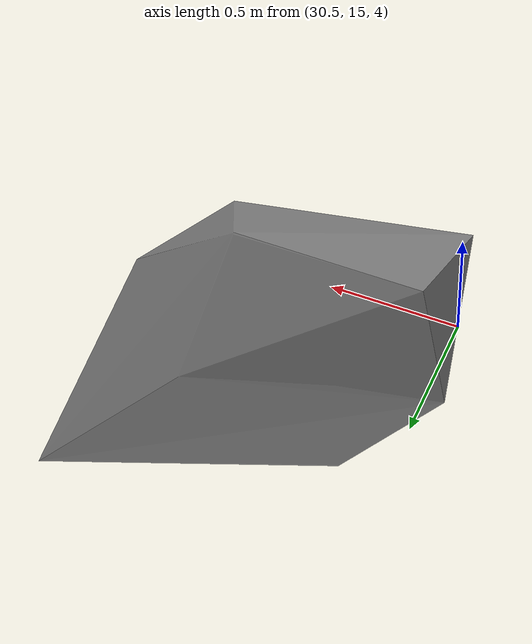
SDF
<sdf version="1.8">
 <model name="blue_mountains">
  <static>true</static>
  <link name="forest_23_21">
   <collision name="tree_16_trunk">
    <pose>30.88953 16.00019 3.052329 0 0 2.099747</pose>
    <geometry><cylinder><radius>0.05017525</radius><length>2.441348</length></cylinder></geometry>
   </collision>
   <collision name="plant_16_crown_0">
    <pose>30.89966 15.98287 1.831656 0 0 2.099747</pose>
    <geometry>
     <mesh><uri>model://blue_mountains/meshes/canopy_8_0.dae</uri><scale>0.200701 0.200701 0.1816582</scale></mesh>
    </geometry>
   </collision>
   <collision name="plant_16_crown_1">
    <pose>30.89966 15.98287 1.831656 0 0 2.099747</pose>
    <geometry>
     <mesh><uri>model://blue_mountains/meshes/canopy_8_1.dae</uri><scale>0.200701 0.200701 0.1816582</scale></mesh>
    </geometry>
   </collision>
   <collision name="tree_18_trunk">
    <pose>36.15719 17.05181 2.548814 0 0 -1.787964</pose>
    <geometry><cylinder><radius>0.0508662</radius><length>2.87935</length></cylinder></geometry>
   </collision>
   <collision name="plant_18_crown_0">
    <pose>36.16158 17.07168 1.109139 0 0 -1.787964</pose>
    <geometry>
     <mesh>
      <uri>model://blue_mountains/meshes/canopy_6_0.dae</uri>
      <scale>0.2034648 0.2034648 0.2122431</scale>
     </mesh>
    </geometry>
   </collision>
   <collision name="plant_18_crown_1">
    <pose>36.16158 17.07168 1.109139 0 0 -1.787964</pose>
    <geometry>
     <mesh>
      <uri>model://blue_mountains/meshes/canopy_6_1.dae</uri>
      <scale>0.2034648 0.2034648 0.2122431</scale>
     </mesh>
    </geometry>
   </collision>
   <collision name="tree_46_trunk">
    <pose>30.44344 14.93611 2.613892 0 0 -2.1679</pose>
    <geometry><cylinder><radius>0.03841094</radius><length>1.98996</length></cylinder></geometry>
   </collision>
   <collision name="plant_46_crown_0">
    <pose>30.45208 14.94881 1.618912 0 0 -2.1679</pose>
    <geometry>
     <mesh>
      <uri>model://blue_mountains/meshes/canopy_4_0.dae</uri>
      <scale>0.1536438 0.1536438 0.1482852</scale>
     </mesh>
    </geometry>
   </collision>
   <collision name="plant_46_crown_1">
    <pose>30.45208 14.94881 1.618912 0 0 -2.1679</pose>
    <geometry>
     <mesh>
      <uri>model://blue_mountains/meshes/canopy_4_1.dae</uri>
      <scale>0.1536438 0.1536438 0.1482852</scale>
     </mesh>
    </geometry>
   </collision>
   <collision name="tree_51_trunk">
    <pose>39.23244 17.48359 1.674162 0 0 1.84734</pose>
    <geometry><cylinder><radius>0.03707054</radius><length>2.200124</length></cylinder></geometry>
   </collision>
   <collision name="plant_51_crown_0">
    <pose>39.23648 17.46932 0.5740995 0 0 1.84734</pose>
    <geometry>
     <mesh>
      <uri>model://blue_mountains/meshes/canopy_6_0.dae</uri>
      <scale>0.1482822 0.1482822 0.1621759</scale>
     </mesh>
    </geometry>
   </collision>
   <collision name="plant_51_crown_1">
    <pose>39.23648 17.46932 0.5740995 0 0 1.84734</pose>
    <geometry>
     <mesh>
      <uri>model://blue_mountains/meshes/canopy_6_1.dae</uri>
      <scale>0.1482822 0.1482822 0.1621759</scale>
     </mesh>
    </geometry>
   </collision>
   <collision name="tree_112_trunk">
    <pose>32.05648 12.81999 2.775335 0 0 -2.555609</pose>
    <geometry><cylinder><radius>0.05678696</radius><length>3.5082</length></cylinder></geometry>
   </collision>
   <collision name="plant_112_crown_0">
    <pose>32.07541 12.83255 1.021235 0 0 -2.555609</pose>
    <geometry>
     <mesh>
      <uri>model://blue_mountains/meshes/canopy_2_0.dae</uri>
      <scale>0.2271479 0.2271479 0.2581171</scale>
     </mesh>
    </geometry>
   </collision>
   <collision name="plant_112_crown_1">
    <pose>32.07541 12.83255 1.021235 0 0 -2.555609</pose>
    <geometry>
     <mesh>
      <uri>model://blue_mountains/meshes/canopy_2_1.dae</uri>
      <scale>0.2271479 0.2271479 0.2581171</scale>
     </mesh>
    </geometry>
   </collision>
   <collision name="tree_157_trunk">
    <pose>31.69096 19.48888 3.387422 0 0 -1.05782</pose>
    <geometry><cylinder><radius>0.03931583</radius><length>1.905594</length></cylinder></geometry>
   </collision>
   <collision name="plant_157_crown_0">
    <pose>31.68325 19.50259 2.434625 0 0 -1.05782</pose>
    <geometry>
     <mesh>
      <uri>model://blue_mountains/meshes/canopy_8_0.dae</uri>
      <scale>0.1572633 0.1572633 0.1417933</scale>
     </mesh>
    </geometry>
   </collision>
   <collision name="plant_157_crown_1">
    <pose>31.68325 19.50259 2.434625 0 0 -1.05782</pose>
    <geometry>
     <mesh>
      <uri>model://blue_mountains/meshes/canopy_8_1.dae</uri>
      <scale>0.1572633 0.1572633 0.1417933</scale>
     </mesh>
    </geometry>
   </collision>
   <collision name="tree_230_trunk">
    <pose>30.88993 16.46943 3.179314 0 0 1.423591</pose>
    <geometry><cylinder><radius>0.03834709</radius><length>2.464366</length></cylinder></geometry>
   </collision>
   <collision name="plant_230_crown_0">
    <pose>30.88768 16.45426 1.947131 0 0 1.423591</pose>
    <geometry>
     <mesh>
      <uri>model://blue_mountains/meshes/canopy_4_0.dae</uri>
      <scale>0.1533883 0.1533883 0.1836364</scale>
     </mesh>
    </geometry>
   </collision>
   <collision name="plant_230_crown_1">
    <pose>30.88768 16.45426 1.947131 0 0 1.423591</pose>
    <geometry>
     <mesh>
      <uri>model://blue_mountains/meshes/canopy_4_1.dae</uri>
      <scale>0.1533883 0.1533883 0.1836364</scale>
     </mesh>
    </geometry>
   </collision>
   <collision name="tree_242_trunk">
    <pose>36.62036 18.8848 2.366649 0 0 1.28106</pose>
    <geometry><cylinder><radius>0.04486017</radius><length>2.423132</length></cylinder></geometry>
   </collision>
   <collision name="plant_242_crown_0">
    <pose>36.61523 18.8676 1.155083 0 0 1.28106</pose>
    <geometry>
     <mesh>
      <uri>model://blue_mountains/meshes/canopy_7_0.dae</uri>
      <scale>0.1794407 0.1794407 0.1821864</scale>
     </mesh>
    </geometry>
   </collision>
   <collision name="plant_242_crown_1">
    <pose>36.61523 18.8676 1.155083 0 0 1.28106</pose>
    <geometry>
     <mesh>
      <uri>model://blue_mountains/meshes/canopy_7_1.dae</uri>
      <scale>0.1794407 0.1794407 0.1821864</scale>
     </mesh>
    </geometry>
   </collision>
   <collision name="tree_245_trunk">
    <pose>35.23278 16.82411 2.51233 0 0 1.507301</pose>
    <geometry><cylinder><radius>0.04345322</radius><length>2.504697</length></cylinder></geometry>
   </collision>
   <collision name="plant_245_crown_0">
    <pose>35.23168 16.80677 1.259982 0 0 1.507301</pose>
    <geometry>
     <mesh>
      <uri>model://blue_mountains/meshes/canopy_4_0.dae</uri>
      <scale>0.1738129 0.1738129 0.1866417</scale>
     </mesh>
    </geometry>
   </collision>
   <collision name="plant_245_crown_1">
    <pose>35.23168 16.80677 1.259982 0 0 1.507301</pose>
    <geometry>
     <mesh>
      <uri>model://blue_mountains/meshes/canopy_4_1.dae</uri>
      <scale>0.1738129 0.1738129 0.1866417</scale>
     </mesh>
    </geometry>
   </collision>
   <collision name="tree_307_trunk">
    <pose>37.77334 18.75098 2.875323 0 0 2.777952</pose>
    <geometry><cylinder><radius>0.06844529</radius><length>3.959532</length></cylinder></geometry>
   </collision>
   <collision name="plant_307_crown_0">
    <pose>37.79892 18.74125 0.8955574 0 0 2.777952</pose>
    <geometry>
     <mesh>
      <uri>model://blue_mountains/meshes/canopy_2_0.dae</uri>
      <scale>0.2737812 0.2737812 0.291324</scale>
     </mesh>
    </geometry>
   </collision>
   <collision name="plant_307_crown_1">
    <pose>37.79892 18.74125 0.8955574 0 0 2.777952</pose>
    <geometry>
     <mesh>
      <uri>model://blue_mountains/meshes/canopy_2_1.dae</uri>
      <scale>0.2737812 0.2737812 0.291324</scale>
     </mesh>
    </geometry>
   </collision>
   <collision name="tree_329_trunk">
    <pose>37.56361 11.942 0.5440206 0 0 2.491261</pose>
    <geometry><cylinder><radius>0.06741486</radius><length>4.203118</length></cylinder></geometry>
   </collision>
   <collision name="plant_329_crown_0">
    <pose>37.58507 11.92567 -1.557538 0 0 2.491261</pose>
    <geometry>
     <mesh>
      <uri>model://blue_mountains/meshes/canopy_1_0.dae</uri>
      <scale>0.2696594 0.2696594 0.3104457</scale>
     </mesh>
    </geometry>
   </collision>
   <collision name="plant_329_crown_1">
    <pose>37.58507 11.92567 -1.557538 0 0 2.491261</pose>
    <geometry>
     <mesh>
      <uri>model://blue_mountains/meshes/canopy_1_1.dae</uri>
      <scale>0.2696594 0.2696594 0.3104457</scale>
     </mesh>
    </geometry>
   </collision>
   <collision name="tree_367_trunk">
    <pose>32.82533 17.01448 3.429985 0 0 0.3549014</pose>
    <geometry><cylinder><radius>0.05329661</radius><length>3.369091</length></cylinder></geometry>
   </collision>
   <collision name="plant_367_crown_0">
    <pose>32.80534 17.00707 1.74544 0 0 0.3549014</pose>
    <geometry>
     <mesh>
      <uri>model://blue_mountains/meshes/canopy_1_0.dae</uri>
      <scale>0.2131865 0.2131865 0.2488438</scale>
     </mesh>
    </geometry>
   </collision>
   <collision name="plant_367_crown_1">
    <pose>32.80534 17.00707 1.74544 0 0 0.3549014</pose>
    <geometry>
     <mesh>
      <uri>model://blue_mountains/meshes/canopy_1_1.dae</uri>
      <scale>0.2131865 0.2131865 0.2488438</scale>
     </mesh>
    </geometry>
   </collision>
   <collision name="tree_372_trunk">
    <pose>34.7804 18.05078 2.782225 0 0 -2.644453</pose>
    <geometry><cylinder><radius>0.04359237</radius><length>2.589221</length></cylinder></geometry>
   </collision>
   <collision name="plant_372_crown_0">
    <pose>34.79572 18.05909 1.487614 0 0 -2.644453</pose>
    <geometry>
     <mesh>
      <uri>model://blue_mountains/meshes/canopy_7_0.dae</uri>
      <scale>0.1743695 0.1743695 0.1946741</scale>
     </mesh>
    </geometry>
   </collision>
   <collision name="plant_372_crown_1">
    <pose>34.79572 18.05909 1.487614 0 0 -2.644453</pose>
    <geometry>
     <mesh>
      <uri>model://blue_mountains/meshes/canopy_7_1.dae</uri>
      <scale>0.1743695 0.1743695 0.1946741</scale>
     </mesh>
    </geometry>
   </collision>
   <collision name="tree_433_trunk">
    <pose>37.75774 15.99304 1.961537 0 0 2.148598</pose>
    <geometry><cylinder><radius>0.04737436</radius><length>2.426991</length></cylinder></geometry>
   </collision>
   <collision name="plant_433_crown_0">
    <pose>37.76809 15.97717 0.7480416 0 0 2.148598</pose>
    <geometry>
     <mesh>
      <uri>model://blue_mountains/meshes/canopy_2_0.dae</uri>
      <scale>0.1894974 0.1894974 0.1785667</scale>
     </mesh>
    </geometry>
   </collision>
   <collision name="plant_433_crown_1">
    <pose>37.76809 15.97717 0.7480416 0 0 2.148598</pose>
    <geometry>
     <mesh>
      <uri>model://blue_mountains/meshes/canopy_2_1.dae</uri>
      <scale>0.1894974 0.1894974 0.1785667</scale>
     </mesh>
    </geometry>
   </collision>
   <collision name="tree_460_trunk">
    <pose>33.45835 13.04389 2.579591 0 0 -0.6585621</pose>
    <geometry><cylinder><radius>0.06677845</radius><length>3.311467</length></cylinder></geometry>
   </collision>
   <collision name="plant_460_crown_0">
    <pose>33.43723 13.06023 0.9238577 0 0 -0.6585621</pose>
    <geometry>
     <mesh>
      <uri>model://blue_mountains/meshes/canopy_8_0.dae</uri>
      <scale>0.2671138 0.2671138 0.2464028</scale>
     </mesh>
    </geometry>
   </collision>
   <collision name="plant_460_crown_1">
    <pose>33.43723 13.06023 0.9238577 0 0 -0.6585621</pose>
    <geometry>
     <mesh>
      <uri>model://blue_mountains/meshes/canopy_8_1.dae</uri>
      <scale>0.2671138 0.2671138 0.2464028</scale>
     </mesh>
    </geometry>
   </collision>
   <collision name="tree_462_trunk">
    <pose>37.47698 15.02886 1.754664 0 0 2.053053</pose>
    <geometry><cylinder><radius>0.03705031</radius><length>2.055434</length></cylinder></geometry>
   </collision>
   <collision name="plant_462_crown_0">
    <pose>37.48385 15.01573 0.7269468 0 0 2.053053</pose>
    <geometry>
     <mesh>
      <uri>model://blue_mountains/meshes/canopy_1_0.dae</uri>
      <scale>0.1482012 0.1482012 0.1518161</scale>
     </mesh>
    </geometry>
   </collision>
   <collision name="plant_462_crown_1">
    <pose>37.48385 15.01573 0.7269468 0 0 2.053053</pose>
    <geometry>
     <mesh>
      <uri>model://blue_mountains/meshes/canopy_1_1.dae</uri>
      <scale>0.1482012 0.1482012 0.1518161</scale>
     </mesh>
    </geometry>
   </collision>
   <collision name="tree_467_trunk">
    <pose>39.06053 15.13636 1.514131 0 0 1.580225</pose>
    <geometry><cylinder><radius>0.04161317</radius><length>1.994506</length></cylinder></geometry>
   </collision>
   <collision name="plant_467_crown_0">
    <pose>39.06068 15.11972 0.5168777 0 0 1.580225</pose>
    <geometry>
     <mesh>
      <uri>model://blue_mountains/meshes/canopy_6_0.dae</uri>
      <scale>0.1664527 0.1664527 0.1470194</scale>
     </mesh>
    </geometry>
   </collision>
   <collision name="plant_467_crown_1">
    <pose>39.06068 15.11972 0.5168777 0 0 1.580225</pose>
    <geometry>
     <mesh>
      <uri>model://blue_mountains/meshes/canopy_6_1.dae</uri>
      <scale>0.1664527 0.1664527 0.1470194</scale>
     </mesh>
    </geometry>
   </collision>
   <visual name="forest_visual">
    <geometry><mesh><uri>model://blue_mountains/meshes/forest_23_21.dae</uri></mesh></geometry>
    <cast_shadows>false</cast_shadows>
   </visual>
  </link>
 </model>
</sdf>
